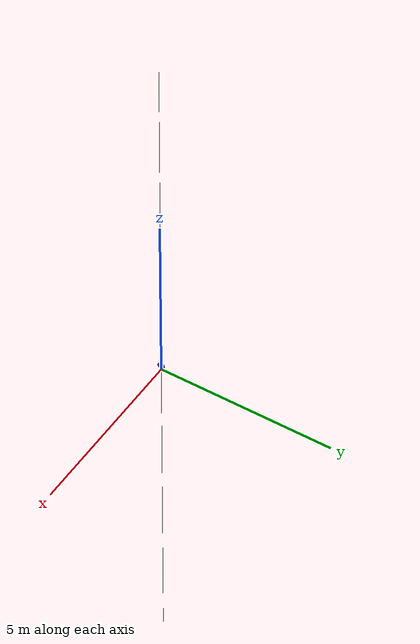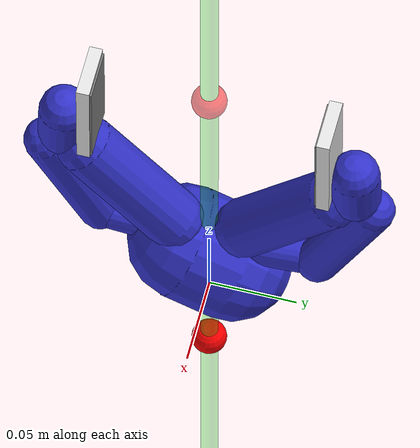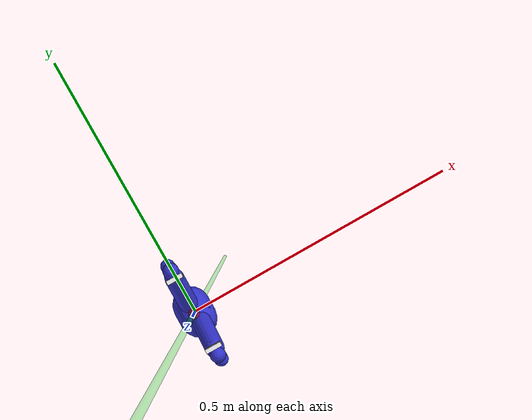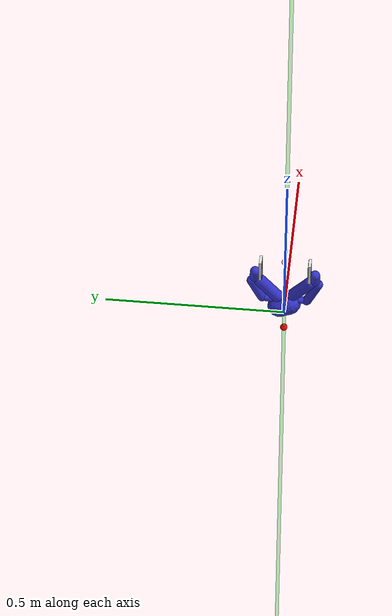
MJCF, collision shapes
<mujoco model="robotiq_gripper_140_model">
  <asset>
    <mesh name="robotiq_arg2f_base_link" file="meshes/robotiq_140_gripper/robotiq_arg2f_base_link.stl"/>
    <mesh name="robotiq_arg2f_140_outer_knuckle" file="meshes/robotiq_140_gripper/robotiq_arg2f_140_outer_knuckle.stl"/>
    <mesh name="robotiq_arg2f_140_outer_finger" file="meshes/robotiq_140_gripper/robotiq_arg2f_140_outer_finger.stl"/>
    <mesh name="robotiq_arg2f_140_inner_finger" file="meshes/robotiq_140_gripper/robotiq_arg2f_140_inner_finger.stl"/>
    <mesh name="robotiq_arg2f_140_inner_knuckle" file="meshes/robotiq_140_gripper/robotiq_arg2f_140_inner_knuckle.stl"/>
    <mesh name="robotiq_arg2f_base_link_vis" file="meshes/robotiq_140_gripper/robotiq_arg2f_base_link_vis.stl"/>
    <mesh name="robotiq_arg2f_140_outer_knuckle_vis" file="meshes/robotiq_140_gripper/robotiq_arg2f_140_outer_knuckle_vis.stl"/>
    <mesh name="robotiq_arg2f_140_outer_finger_vis" file="meshes/robotiq_140_gripper/robotiq_arg2f_140_outer_finger_vis.stl"/>
    <mesh name="robotiq_arg2f_140_inner_finger_vis" file="meshes/robotiq_140_gripper/robotiq_arg2f_140_inner_finger_vis.stl"/>
    <mesh name="robotiq_arg2f_140_inner_knuckle_vis" file="meshes/robotiq_140_gripper/robotiq_arg2f_140_inner_knuckle_vis.stl"/>
  </asset>
  <tendon>
    <fixed name="finger2_12_cpl" range="0 1" limited="true">
      <joint joint="finger_joint" coef="1"/>
      <joint joint="left_inner_finger_joint" coef="1.5"/>
    </fixed>
    <fixed name="finger2_23_cpl" range="0 1" limited="true">
      <joint joint="left_inner_finger_joint" coef="1"/>
      <joint joint="left_inner_knuckle_joint" coef="3.5"/>
    </fixed>
    <fixed name="finger1_12_cpl" range="0 1" limited="true">
      <joint joint="right_outer_knuckle_joint" coef="1"/>
      <joint joint="right_inner_finger_joint" coef="-1.5"/>
    </fixed>
    <fixed name="finger1_23_cpl" range="0 1" limited="true">
      <joint joint="right_inner_finger_joint" coef="1"/>
      <joint joint="right_inner_knuckle_joint" coef="3.5"/>
    </fixed>
  </tendon>
  <equality>
    <tendon name="finger2_12_cpl" tendon1="finger2_12_cpl"/>
    <tendon name="finger2_23_cpl" tendon1="finger2_23_cpl"/>
    <tendon name="finger1_12_cpl" tendon1="finger1_12_cpl"/>
    <tendon name="finger1_23_cpl" tendon1="finger1_23_cpl"/>
  </equality>
  <actuator>
    <position name="finger_1" ctrllimited="true" kp="20" joint="finger_joint" ctrlrange="0 0.7"/>
    <position name="finger_2" ctrllimited="true" kp="20" joint="right_outer_knuckle_joint" ctrlrange="-0.7 0"/>
  </actuator>
  <worldbody>
    <body name="right_gripper" pos="0 0 -0.0625" quat="0 -0.707105 0.707108 0 ">
      <geom pos="0 0 -0.061525" quat="0 0.707388 -0.706825 0" type="mesh" contype="0" conaffinity="0" group="1" rgba="0.1 0.1 0.1 1" name="hand_visual" mesh="robotiq_arg2f_base_link_vis"/>
      <geom pos="-0.000085 0.000000 -0.097641" quat="0.592497 0.385015 -0.384709 -0.593893" type="capsule" group="0" rgba="0.2 0.2 0.8 0.5" name="hand_collision" size="0.032904 0.014718"/>
      <site name="ft_frame" pos="0 0 0" size="0.01 0.01 0.01" rgba="1 0 0 1" type="sphere" group="1"/>
      <body name="eef" pos="0 0 -0.27" quat="0 1 0 0">
        <site name="grip_site" pos="0 0 0" size="0.01 0.01 0.01" rgba="1 0 0 0.5" type="sphere" group="1"/>
        <site name="ee_x" pos="0.1 0 0" size="0.005 .1" quat="0.707105  0 0.707108 0 " rgba="1 0 0 0" type="cylinder" group="1"/>
        <site name="ee_y" pos="0 0.1 0" size="0.005 .1" quat="0.707105 0.707108 0 0" rgba="0 1 0 0" type="cylinder" group="1"/>
        <site name="ee_z" pos="0 0 0.1" size="0.005 .1" quat="1 0 0 0" rgba="0 0 1 0" type="cylinder" group="1"/>
        <site name="grip_site_cylinder" pos="0 0 0" size="0.005 10" rgba="0 1 0 0.3" type="cylinder" group="1"/>
      </body>
      <body name="left_outer_knuckle" pos="0.030601 2.43684e-05 -0.11643" quat="-0.64507 0.290316 -0.290085 0.644556">
        <inertial pos="0.000163875 0.0458404 0.0117804" quat="0.881368 0.472423 -0.0024451 -0.000996122" mass="0.0311462" diaginertia="2.96023e-05 2.79814e-05 4.39017e-06"/>
        <joint name="finger_joint" pos="0 0 0" axis="-1 0 0" limited="true" range="0 0.7"/>
        <geom type="mesh" contype="0" conaffinity="0" group="1" rgba="0.792157 0.819608 0.933333 1" name="left_outer_knuckle_visual" mesh="robotiq_arg2f_140_outer_knuckle_vis"/>
        <geom type="capsule" group="0" rgba="0.2 0.2 0.8 0.5" name="left_outer_knuckle_collision" pos="-0.000190 0.004730 0.003802" quat="0.398821 0.917023 0.003193 0.000000" size="0.010029 0.023032"/>
        <geom pos="0 0.01822 0.0260018" type="mesh" contype="0" conaffinity="0" group="1" rgba="0.1 0.1 0.1 1" name="left_outer_finger_visual" mesh="robotiq_arg2f_140_outer_finger_vis"/>
        <geom pos="-0.000196 0.058789 0.010867" type="capsule" group="0" rgba="0.2 0.2 0.8 0.5" name="left_outer_finger_collision" quat="0.593594 -0.804447 0.022615 0.000000" size="0.012731 0.036783"/>
        <body name="left_inner_finger" pos="0 0.0999754 -0.00221853" quat="0.935013 -0.354613 0 0">
          <inertial pos="0.000119314 0.0339244 -0.021841" quat="0.545437 0.430197 -0.442938 0.566776" mass="0.0261503" diaginertia="1.62408e-05 1.59131e-05 2.38936e-06"/>
          <joint name="left_inner_finger_joint" pos="0 0 0" axis="1 0 0" limited="true" range="-0.8757 0.8757"/>
          <geom type="mesh" contype="0" conaffinity="0" group="1" rgba="0.1 0.1 0.1 1" name="left_inner_finger_visual" mesh="robotiq_arg2f_140_inner_finger_vis"/>
          <geom type="capsule" group="0" rgba="0.2 0.2 0.8 0.5" name="left_inner_finger_collision" pos="-0.000185 0.019267 -0.012051" quat="0.719781 0.694178 -0.005700 0.000000" size="0.014071 0.011646"/>
          <geom size="0.0135 0.0325 0.00375" pos="0 0.0457554 -0.0272203" type="box" contype="0" conaffinity="0" group="1" rgba="0.9 0.9 0.9 1" name="left_fingertip_visual"/>
          <geom size="0.015 0.035 0.00375" pos="0 0.0457554 -0.0272203" type="box" group="0" rgba="0.9 0.9 0.9 1" name="left_fingertip_collision" solref="0.01 0.25"/>
          <geom size="0.014 0.033 0.001" pos="0 0.045 -0.031" type="box" group="0" name="left_fingerpad_collision"/>
        </body>
      </body>
      <body name="left_inner_knuckle" pos="0.0127 1.01133e-05 -0.122945" quat="-0.64507 0.290316 -0.290085 0.644556">
        <inertial pos="0.000123012 0.0507851 0.00103969" quat="0.497203 0.502496 -0.507943 0.492221" mass="0.0271177" diaginertia="2.83809e-05 2.61936e-05 2.81319e-06"/>
        <joint name="left_inner_knuckle_joint" pos="0 0 0" axis="1 0 0" limited="true" range="-0.8757 0.8757"/>
        <geom type="mesh" contype="0" conaffinity="0" group="1" rgba="0.1 0.1 0.1 1" name="left_inner_knuckle_visual" mesh="robotiq_arg2f_140_inner_knuckle_vis"/>
        <geom type="capsule" group="0" rgba="0.2 0.2 0.8 0.5" name="left_inner_knuckle_collision" pos="0.001474 0.049943 -0.001107" quat="0.699250 -0.714730 -0.014472 0.000000" size="0.017041 0.039266"/>
      </body>
      <body name="right_outer_knuckle" pos="-0.030601 -2.43684e-05 -0.11643" quat="0.644556 -0.290085 -0.290316 0.64507">
        <inertial pos="0.000163875 0.0458404 0.0117804" quat="0.881368 0.472423 -0.0024451 -0.000996122" mass="0.0311462" diaginertia="2.96023e-05 2.79814e-05 4.39017e-06"/>
        <joint name="right_outer_knuckle_joint" pos="0 0 0" axis="1 0 0" limited="true" range="-0.725 0.725"/>
        <geom type="mesh" contype="0" conaffinity="0" group="1" rgba="0.792157 0.819608 0.933333 1" name="right_outer_knuckle_visual" mesh="robotiq_arg2f_140_outer_knuckle_vis"/>
        <geom type="capsule" group="0" rgba="0.2 0.2 0.8 0.5" name="right_outer_knuckle_collision" pos="-0.000190 0.004730 0.003802" quat="0.398821 0.917023 0.003193 0.000000" size="0.010029 0.023032"/>
        <geom pos="0 0.01822 0.0260018" type="mesh" contype="0" conaffinity="0" group="1" rgba="0.1 0.1 0.1 1" name="right_outer_finger_visual" mesh="robotiq_arg2f_140_outer_finger_vis"/>
        <geom pos="-0.000196 0.058789 0.010867" type="capsule" group="0" rgba="0.2 0.2 0.8 0.5" name="right_outer_finger_collision" quat="0.593594 -0.804447 0.022615 0.000000" size="0.012731 0.036783"/>
        <body name="right_inner_finger" pos="0 0.0999754 -0.00221853" quat="0.935013 -0.354613 0 0">
          <inertial pos="0.000119314 0.0339244 -0.021841" quat="0.545437 0.430197 -0.442938 0.566776" mass="0.0261503" diaginertia="1.62408e-05 1.59131e-05 2.38936e-06"/>
          <joint name="right_inner_finger_joint" pos="0 0 0" axis="1 0 0" limited="true" range="-0.8757 0.8757"/>
          <geom type="mesh" contype="0" conaffinity="0" group="1" rgba="0.1 0.1 0.1 1" name="right_inner_finger_visual" mesh="robotiq_arg2f_140_inner_finger_vis"/>
          <geom type="capsule" group="0" rgba="0.2 0.2 0.8 0.5" name="right_inner_finger_collision" pos="-0.000185 0.019267 -0.012051" quat="0.719781 0.694178 -0.005700 0.000000" size="0.014071 0.011646"/>
          <geom size="0.0135 0.0325 0.00375" pos="0 0.0457554 -0.0272203" type="box" contype="0" conaffinity="0" group="1" rgba="0.9 0.9 0.9 1" name="right_fingertip_visual"/>
          <geom size="0.015 0.035 0.00375" pos="0 0.0457554 -0.0272203" type="box" group="0" rgba="0.9 0.9 0.9 1" name="right_fingertip_collision" solref="0.01 0.25"/>
          <geom size="0.014 0.033 0.001" pos="0 0.045 -0.031" type="box" group="0" name="right_fingerpad_collision"/>
        </body>
      </body>
      <body name="right_inner_knuckle" pos="-0.0127 -1.01133e-05 -0.122945" quat="-0.644556 0.290085 0.290316 -0.64507">
        <inertial pos="0.000123012 0.0507851 0.00103969" quat="0.497203 0.502496 -0.507943 0.492221" mass="0.0271177" diaginertia="2.83809e-05 2.61936e-05 2.81319e-06"/>
        <joint name="right_inner_knuckle_joint" pos="0 0 0" axis="1 0 0" limited="true" range="-0.8757 0.8757"/>
        <geom type="mesh" contype="0" conaffinity="0" group="1" rgba="0.1 0.1 0.1 1" name="right_inner_knuckle_visual" mesh="robotiq_arg2f_140_inner_knuckle_vis"/>
        <geom type="capsule" group="0" rgba="0.2 0.2 0.8 0.5" name="right_inner_knuckle_collision" pos="0.001474 0.049943 -0.001107" quat="0.699250 -0.714730 -0.014472 0.000000" size="0.017041 0.039266"/>
      </body>
    </body>
  </worldbody>
  <sensor>
    <force name="force_ee" site="ft_frame"/>
    <torque name="torque_ee" site="ft_frame"/>
  </sensor>
</mujoco>
